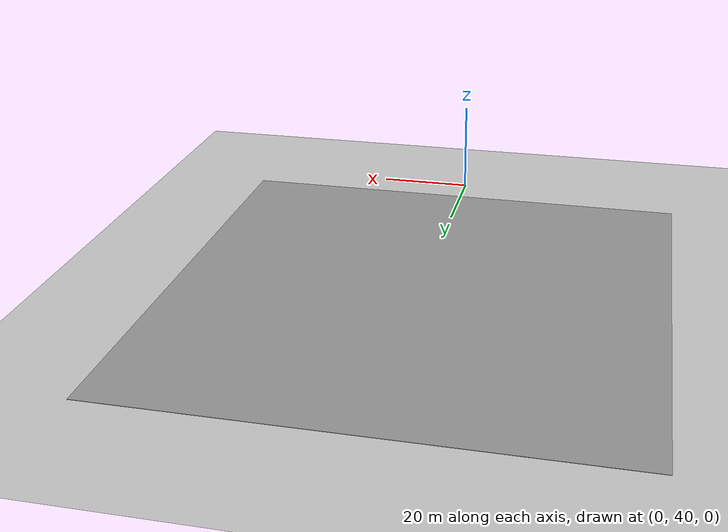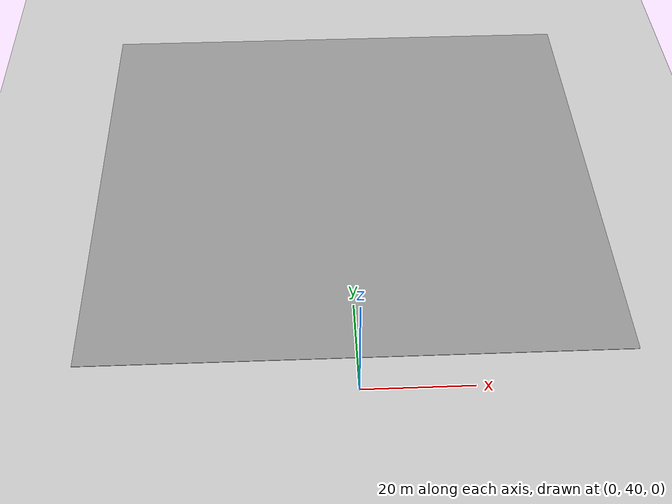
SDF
<sdf version="1.7">
 <world name="small_road_fixed">
  <model name="ground_plane">
   <static>1</static>
   <link name="link">
    <collision name="collision">
     <geometry><plane><normal>0 0 1</normal><size>100 100</size></plane></geometry>
     <surface>
      <contact><collide_bitmask>65535</collide_bitmask></contact>
      <friction><ode><mu>100</mu><mu2>50</mu2></ode></friction>
     </surface>
    </collision>
    <visual name="visual">
     <cast_shadows>0</cast_shadows>
     <geometry><plane><normal>0 0 1</normal><size>100 100</size></plane></geometry>
     <material>
      <script><uri>file://media/materials/scripts/gazebo.material</uri><name>Gazebo/Grey</name></script>
     </material>
    </visual>
   </link>
  </model>
  <model name="ground_plane_1">
   <static>1</static>
   <link name="link">
    <collision name="collision">
     <geometry><plane><normal>0 0 1</normal><size>100 100</size></plane></geometry>
     <surface><friction><ode><mu>100</mu><mu2>50</mu2></ode></friction></surface>
    </collision>
    <visual name="visual">
     <cast_shadows>0</cast_shadows>
     <geometry><plane><normal>0 0 1</normal><size>100 100</size></plane></geometry>
     <material>
      <script><uri>file://media/materials/scripts/gazebo.material</uri><name>Gazebo/Grey</name></script>
     </material>
    </visual>
   </link>
   <pose>0.013984 97.2108 0 0 -0 0</pose>
  </model>
 </world>
</sdf>
